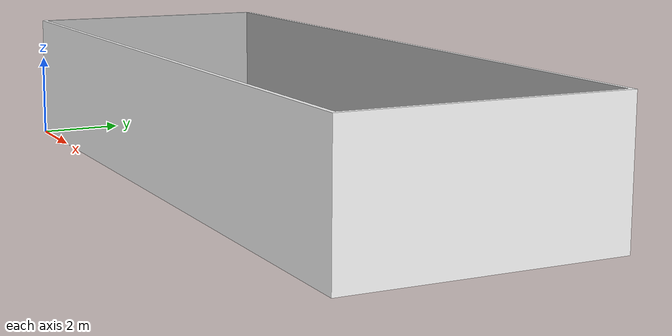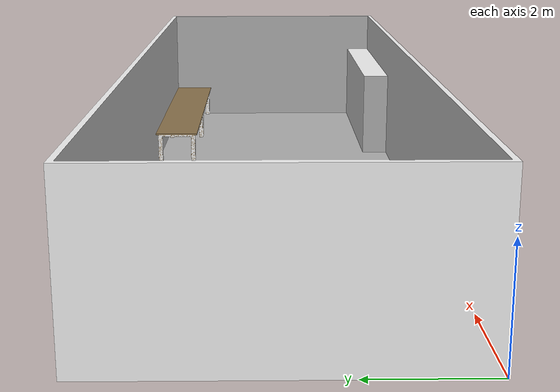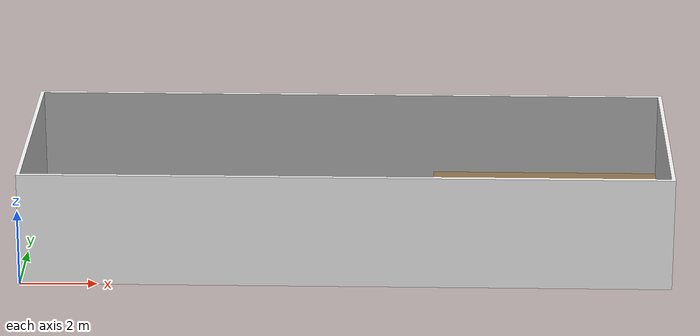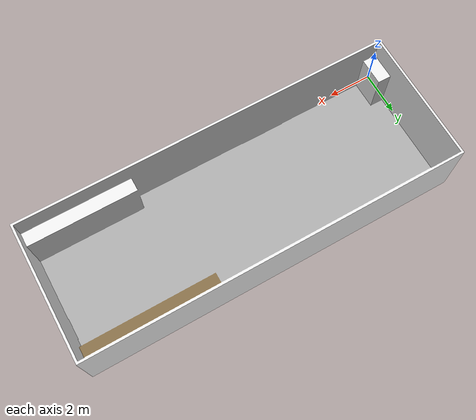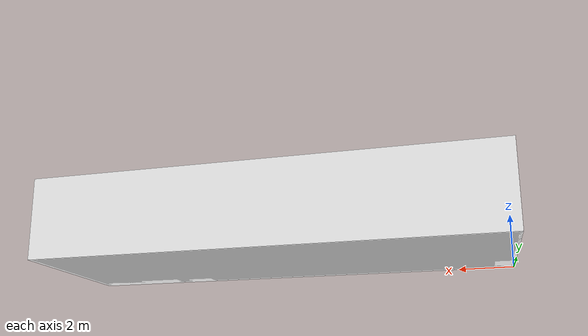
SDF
<?xml version='1.0'?>
<sdf version='1.6'>
  <model name='room_16_7x6'>
    <link name='link_0'>
      <visual name='visual'>
        <geometry>
          <mesh>
            <uri>model://room_16_7x6/16_7x6.dae</uri>
            <scale>1 1 1</scale>
          </mesh>
        </geometry>
        <cast_shadows>0</cast_shadows>
      </visual>
      <collision name='collision'>
        <geometry>
          <mesh>
            <uri>model://room_16_7x6/16_7x6.dae</uri>
          </mesh>
        </geometry>
      </collision>
    </link>
    <static>1</static>
  </model>
</sdf>
